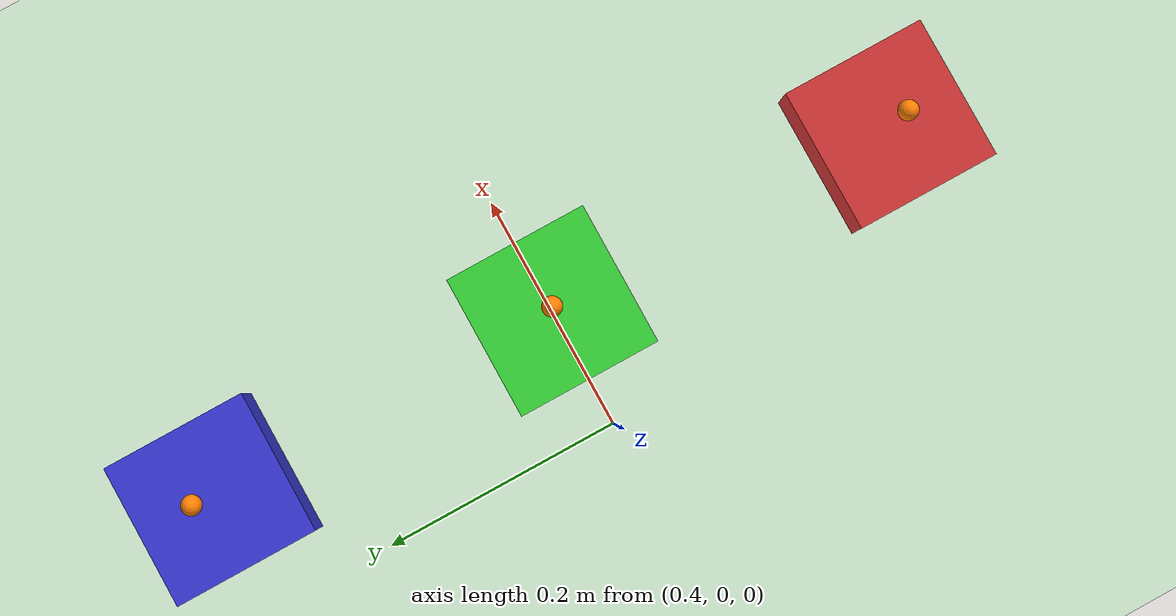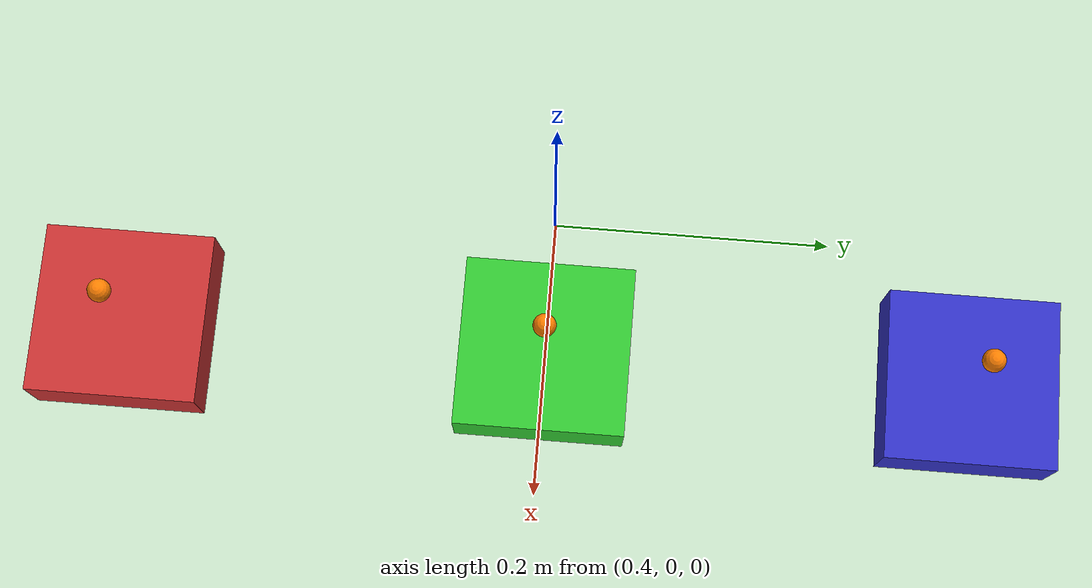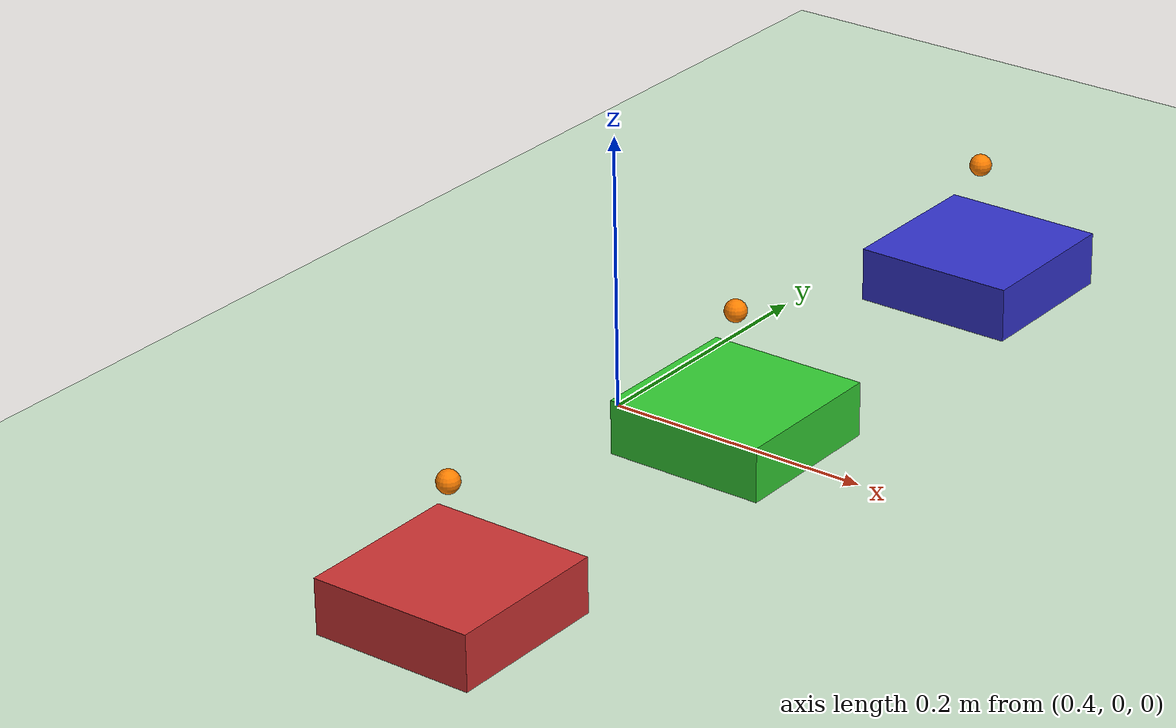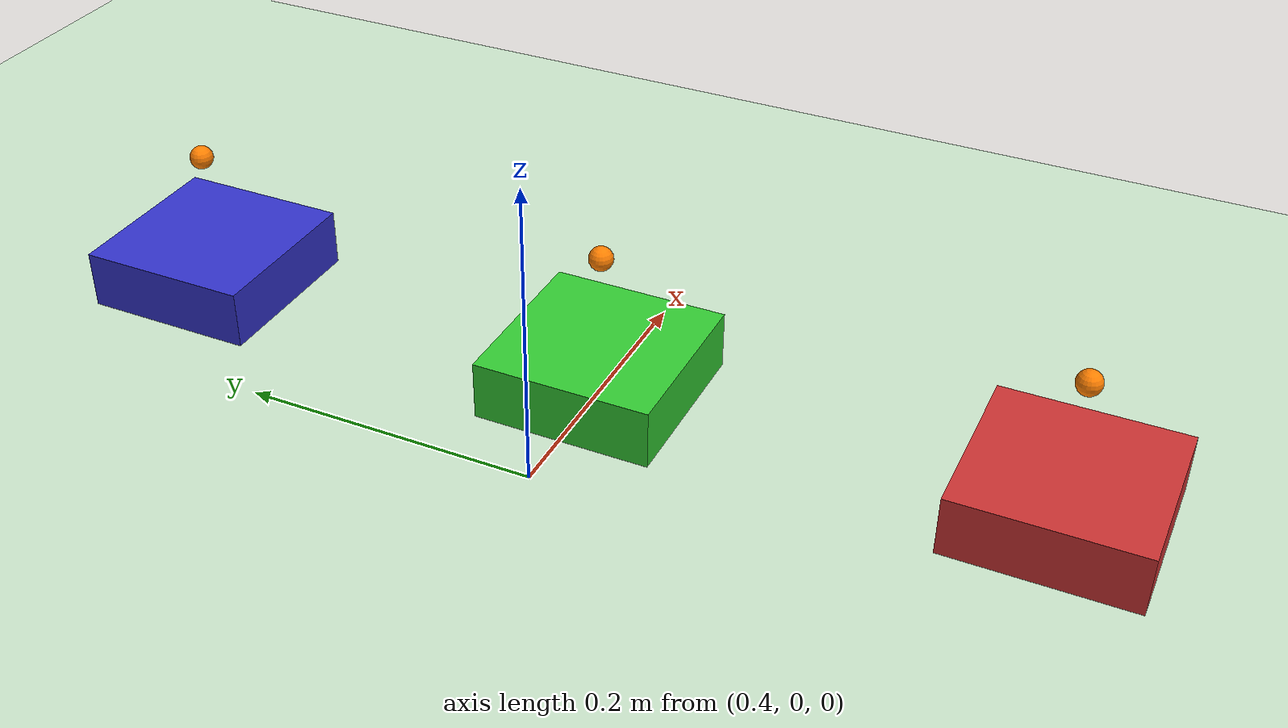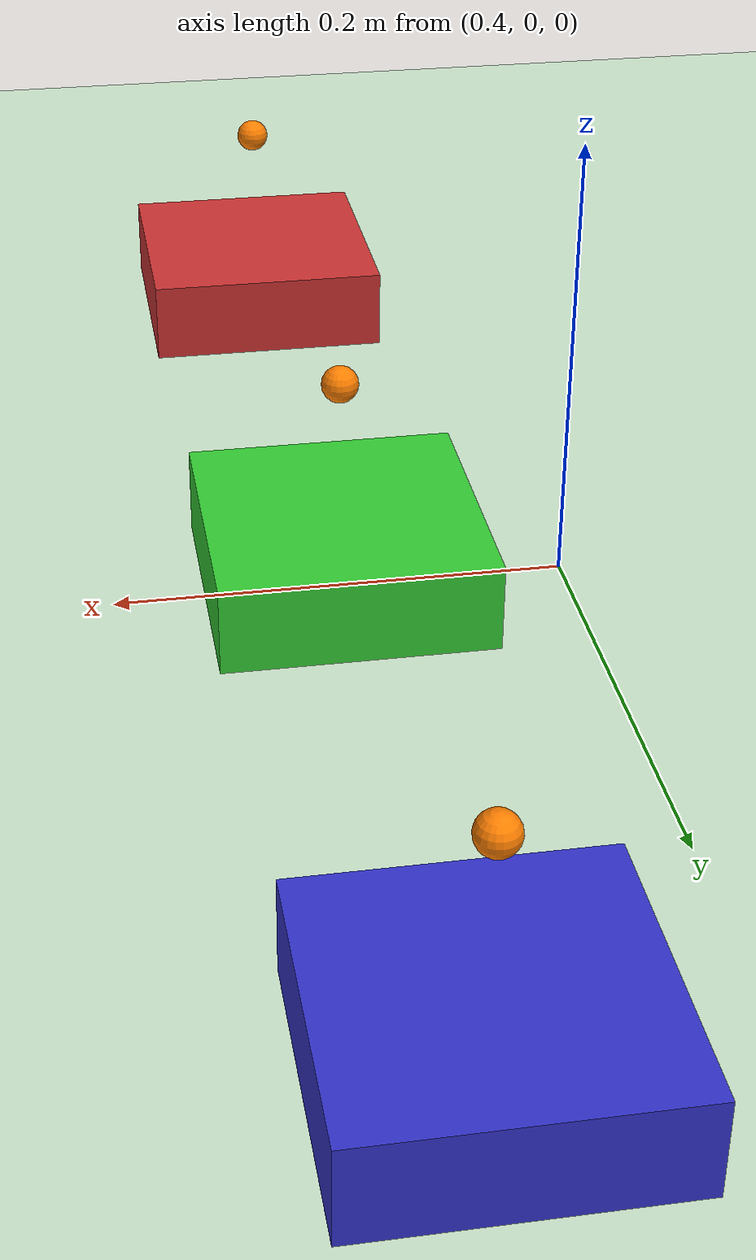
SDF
<sdf version="1.9">
  <world name="tool_changer_world">
    <!-- Physics settings for stable tool contact -->
    <physics name="1ms" type="ode">
      <max_step_size>0.001</max_step_size>
      <real_time_factor>1.0</real_time_factor>
      <real_time_update_rate>1000</real_time_update_rate>
      <ode>
        <solver>
          <iters>200</iters>
          <sor>1.3</sor>
          <use_dynamic_moi_rescaling>1</use_dynamic_moi_rescaling>
        </solver>
        <constraints>
          <cfm>0.0</cfm>
          <erp>0.2</erp>
          <contact_surface_layer>0.001</contact_surface_layer>
          <contact_max_correcting_vel>100.0</contact_max_correcting_vel>
        </constraints>
      </ode>
    </physics>

    <!-- Ground plane -->
    <model name="ground_plane">
      <static>true</static>
      <link name="link">
        <collision name="collision">
          <geometry>
            <plane>
              <normal>0 0 1</normal>
              <size>100 100</size>
            </plane>
          </geometry>
          <surface>
            <friction>
              <ode>
                <mu>100</mu>
                <mu2>100</mu2>
              </ode>
            </friction>
            <contact>
              <ode>
                <kp>1e8</kp>
                <kd>1</kd>
              </ode>
            </contact>
          </surface>
        </collision>
        <visual name="visual">
          <geometry>
            <plane>
              <normal>0 0 1</normal>
              <size>100 100</size>
            </plane>
          </geometry>
          <material>
            <ambient>0.8 0.9 0.8 1</ambient>
            <diffuse>0.8 0.9 0.8 1</diffuse>
            <specular>0.8 0.9 0.8 1</specular>
          </material>
        </visual>
      </link>
    </model>

    <!-- Sun -->
    <light name="sun" type="directional">
      <cast_shadows>true</cast_shadows>
      <pose>0 0 10 0 0 0</pose>
      <diffuse>0.8 0.8 0.8 1</diffuse>
      <specular>0.2 0.2 0.2 1</specular>
      <attenuation>
        <range>1000</range>
        <constant>0.9</constant>
        <linear>0.01</linear>
        <quadratic>0.001</quadratic>
      </attenuation>
      <direction>-0.5 0.1 -0.9</direction>
    </light>

    <!-- Tool docks with visual markers -->
    <model name="gripper_dock">
      <static>true</static>
      <pose>0.5 -0.3 0.02 0 0 0</pose>
      <link name="base">
        <visual name="visual">
          <geometry>
            <box>
              <size>0.12 0.12 0.04</size>
            </box>
          </geometry>
          <material>
            <ambient>0.8 0.2 0.2 1</ambient>
            <diffuse>0.8 0.2 0.2 1</diffuse>
          </material>
        </visual>
        <collision name="collision">
          <geometry>
            <box>
              <size>0.13 0.13 0.05</size>
            </box>
          </geometry>
        </collision>
      </link>
      <!-- Docking point marker -->
      <link name="docking_point">
        <pose>0 0 0.08 0 0 0</pose>
        <visual name="marker">
          <geometry>
            <sphere>
              <radius>0.008</radius>
            </sphere>
          </geometry>
          <material>
            <ambient>1.0 0.5 0.0 1</ambient>
            <diffuse>1.0 0.5 0.0 1</diffuse>
          </material>
        </visual>
      </link>
    </model>

    <model name="screwdriver_dock">
      <static>true</static>
      <pose>0.5 0.0 0.02 0 0 0</pose>
      <link name="base">
        <visual name="visual">
          <geometry>
            <box>
              <size>0.12 0.12 0.04</size>
            </box>
          </geometry>
          <material>
            <ambient>0.2 0.8 0.2 1</ambient>
            <diffuse>0.2 0.8 0.2 1</diffuse>
          </material>
        </visual>
        <collision name="collision">
          <geometry>
            <box>
              <size>0.13 0.13 0.05</size>
            </box>
          </geometry>
        </collision>
      </link>
      <link name="docking_point">
        <pose>0 0 0.08 0 0 0</pose>
        <visual name="marker">
          <geometry>
            <sphere>
              <radius>0.008</radius>
            </sphere>
          </geometry>
          <material>
            <ambient>1.0 0.5 0.0 1</ambient>
            <diffuse>1.0 0.5 0.0 1</diffuse>
          </material>
        </visual>
      </link>
    </model>

    <model name="camera_dock">
      <static>true</static>
      <pose>0.5 0.3 0.02 0 0 0</pose>
      <link name="base">
        <visual name="visual">
          <geometry>
            <box>
              <size>0.12 0.12 0.04</size>
            </box>
          </geometry>
          <material>
            <ambient>0.2 0.2 0.8 1</ambient>
            <diffuse>0.2 0.2 0.8 1</diffuse>
          </material>
        </visual>
        <collision name="collision">
          <geometry>
            <box>
              <size>0.13 0.13 0.05</size>
            </box>
          </geometry>
        </collision>
      </link>
      <link name="docking_point">
        <pose>0 0 0.08 0 0 0</pose>
        <visual name="marker">
          <geometry>
            <sphere>
              <radius>0.008</radius>
            </sphere>
          </geometry>
          <material>
            <ambient>1.0 0.5 0.0 1</ambient>
            <diffuse>1.0 0.5 0.0 1</diffuse>
          </material>
        </visual>
      </link>
    </model>

  </world>
</sdf>
